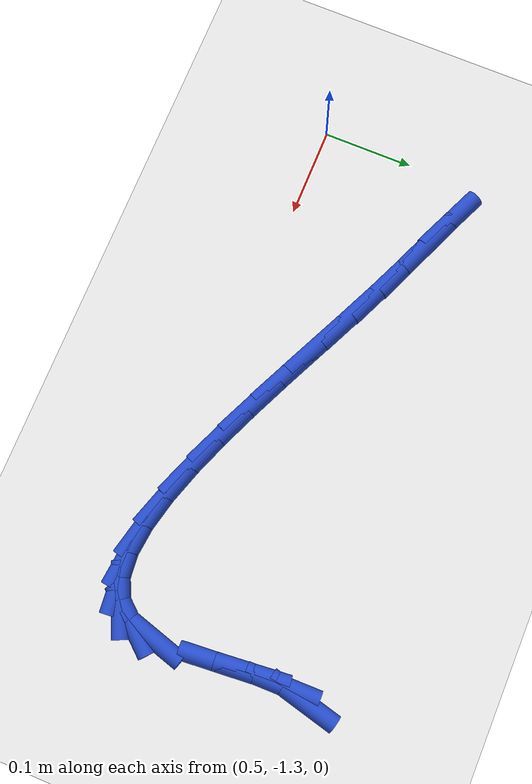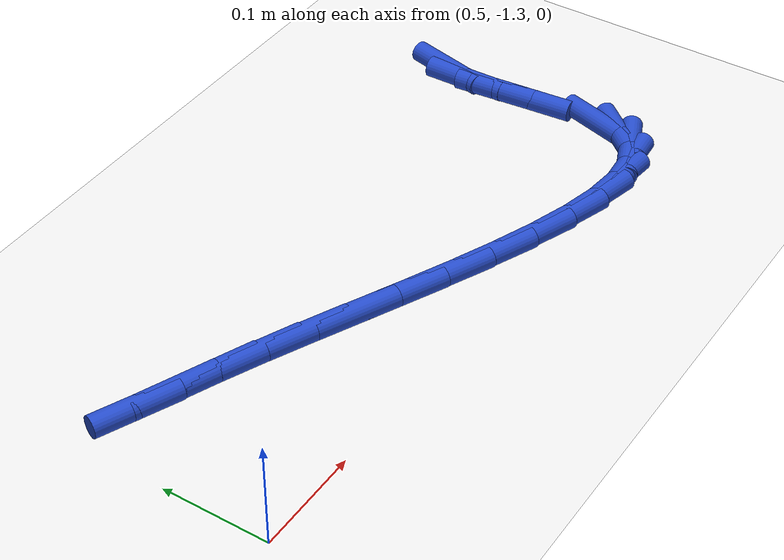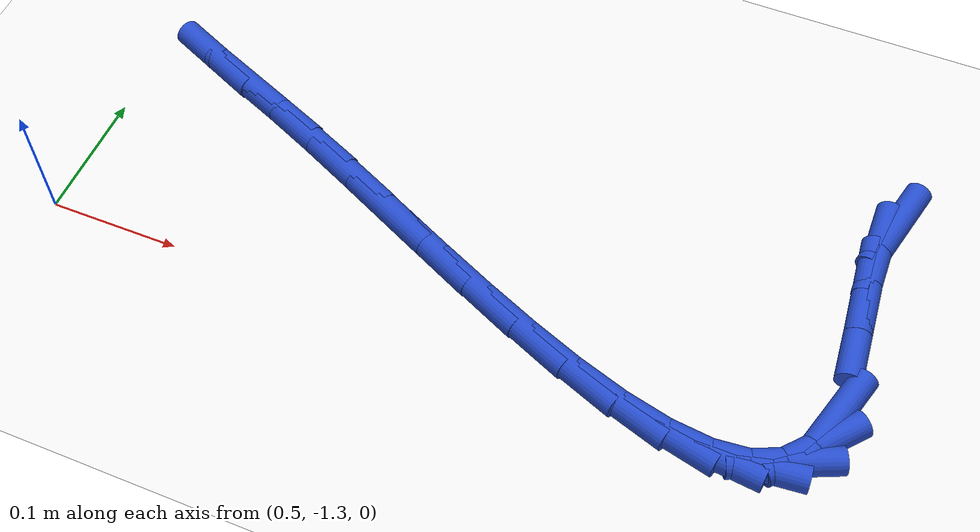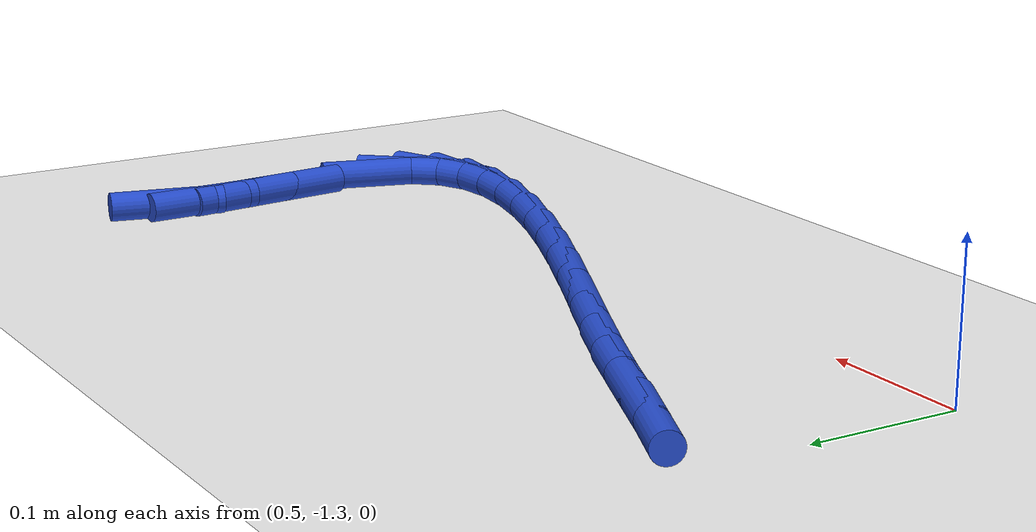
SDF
<sdf version="1.6">
 <world name="default">
  <model name="ground_plane">
   <static>1</static>
   <link name="link">
    <collision name="collision">
     <geometry><plane><normal>0 0 1</normal><size>100 100</size></plane></geometry>
     <surface><friction><ode><mu>100</mu><mu2>50</mu2></ode></friction></surface>
    </collision>
    <visual name="visual">
     <cast_shadows>0</cast_shadows>
     <geometry><plane><normal>0 0 1</normal><size>100 100</size></plane></geometry>
     <material>
      <script><uri>file://media/materials/scripts/gazebo.material</uri><name>Gazebo/WhiteGlow</name></script>
     </material>
    </visual>
   </link>
  </model>
  <model name="line">
   <link name="link_191">
    <pose>1.080014951495768 -1.093211270883468 0.01 0 1.57 1.3314929885869973</pose>
    <collision name="collision">
     <geometry><cylinder><radius>0.01</radius><length>0.08</length></cylinder></geometry>
    </collision>
    <visual name="visual">
     <material>
      <script><name>Gazebo/Blue</name><uri>file://media/materials/scripts/gazebo.material</uri></script>
     </material>
     <geometry><cylinder><radius>0.01</radius><length>0.08</length></cylinder></geometry>
    </visual>
   </link>
   <link name="link_192">
    <pose>1.0740790796262594 -1.1175407637634944 0.01 0 1.57 -1.5575941672031677</pose>
    <collision name="collision">
     <geometry><cylinder><radius>0.01</radius><length>0.08</length></cylinder></geometry>
    </collision>
    <visual name="visual">
     <material>
      <script><name>Gazebo/Blue</name><uri>file://media/materials/scripts/gazebo.material</uri></script>
     </material>
     <geometry><cylinder><radius>0.01</radius><length>0.08</length></cylinder></geometry>
    </visual>
   </link>
   <link name="link_193">
    <pose>1.0745164567472583 -1.1506680492268253 0.01 0 1.57 -1.4792197106948508</pose>
    <collision name="collision">
     <geometry><cylinder><radius>0.01</radius><length>0.08</length></cylinder></geometry>
    </collision>
    <visual name="visual">
     <material>
      <script><name>Gazebo/Blue</name><uri>file://media/materials/scripts/gazebo.material</uri></script>
     </material>
     <geometry><cylinder><radius>0.01</radius><length>0.08</length></cylinder></geometry>
    </visual>
   </link>
   <link name="link_194">
    <pose>1.0779749759274153 -1.1883288177135396 0.01 0 1.57 -1.4896386619614683</pose>
    <collision name="collision">
     <geometry><cylinder><radius>0.01</radius><length>0.08</length></cylinder></geometry>
    </collision>
    <visual name="visual">
     <material>
      <script><name>Gazebo/Blue</name><uri>file://media/materials/scripts/gazebo.material</uri></script>
     </material>
     <geometry><cylinder><radius>0.01</radius><length>0.08</length></cylinder></geometry>
    </visual>
   </link>
   <link name="link_196">
    <pose>1.0803561748203871 -1.2599360161398665 0.01 0 1.57 1.286484186516221</pose>
    <collision name="collision">
     <geometry><cylinder><radius>0.01</radius><length>0.08</length></cylinder></geometry>
    </collision>
    <visual name="visual">
     <material>
      <script><name>Gazebo/Blue</name><uri>file://media/materials/scripts/gazebo.material</uri></script>
     </material>
     <geometry><cylinder><radius>0.01</radius><length>0.08</length></cylinder></geometry>
    </visual>
   </link>
   <link name="link_197">
    <pose>1.0728366099445188 -1.2856677836955757 0.01 0 1.57 0.8606540219447025</pose>
    <collision name="collision">
     <geometry><cylinder><radius>0.01</radius><length>0.08</length></cylinder></geometry>
    </collision>
    <visual name="visual">
     <material>
      <script><name>Gazebo/Blue</name><uri>file://media/materials/scripts/gazebo.material</uri></script>
     </material>
     <geometry><cylinder><radius>0.01</radius><length>0.08</length></cylinder></geometry>
    </visual>
   </link>
   <link name="link_198">
    <pose>1.058110782414865 -1.3027952974203194 0.01 0 1.57 0.4192141598302386</pose>
    <collision name="collision">
     <geometry><cylinder><radius>0.01</radius><length>0.08</length></cylinder></geometry>
    </collision>
    <visual name="visual">
     <material>
      <script><name>Gazebo/Blue</name><uri>file://media/materials/scripts/gazebo.material</uri></script>
     </material>
     <geometry><cylinder><radius>0.01</radius><length>0.08</length></cylinder></geometry>
    </visual>
   </link>
   <link name="link_199">
    <pose>1.0369904574643043 -1.3122071545612584 0.01 0 1.57 0.0967836911282105</pose>
    <collision name="collision">
     <geometry><cylinder><radius>0.01</radius><length>0.08</length></cylinder></geometry>
    </collision>
    <visual name="visual">
     <material>
      <script><name>Gazebo/Blue</name><uri>file://media/materials/scripts/gazebo.material</uri></script>
     </material>
     <geometry><cylinder><radius>0.01</radius><length>0.08</length></cylinder></geometry>
    </visual>
   </link>
   <link name="link_200">
    <pose>1.0102931811226994 -1.3147991135987533 0.01 0 1.57 -0.10553561893972158</pose>
    <collision name="collision">
     <geometry><cylinder><radius>0.01</radius><length>0.08</length></cylinder></geometry>
    </collision>
    <visual name="visual">
     <material>
      <script><name>Gazebo/Blue</name><uri>file://media/materials/scripts/gazebo.material</uri></script>
     </material>
     <geometry><cylinder><radius>0.01</radius><length>0.08</length></cylinder></geometry>
    </visual>
   </link>
   <link name="link_201">
    <pose>0.9788364994199144 -1.3114669330131674 0.01 0 1.57 -0.2319335047512114</pose>
    <collision name="collision">
     <geometry><cylinder><radius>0.01</radius><length>0.08</length></cylinder></geometry>
    </collision>
    <visual name="visual">
     <material>
      <script><name>Gazebo/Blue</name><uri>file://media/materials/scripts/gazebo.material</uri></script>
     </material>
     <geometry><cylinder><radius>0.01</radius><length>0.08</length></cylinder></geometry>
    </visual>
   </link>
   <link name="link_202">
    <pose>0.9434379583858127 -1.303106371284862 0.01 0 1.57 -0.3136038743463667</pose>
    <collision name="collision">
     <geometry><cylinder><radius>0.01</radius><length>0.08</length></cylinder></geometry>
    </collision>
    <visual name="visual">
     <material>
      <script><name>Gazebo/Blue</name><uri>file://media/materials/scripts/gazebo.material</uri></script>
     </material>
     <geometry><cylinder><radius>0.01</radius><length>0.08</length></cylinder></geometry>
    </visual>
   </link>
   <link name="link_203">
    <pose>0.904915104050258 -1.2906131868942001 0.01 0 1.57 -0.36773586781821144</pose>
    <collision name="collision">
     <geometry><cylinder><radius>0.01</radius><length>0.08</length></cylinder></geometry>
    </collision>
    <visual name="visual">
     <material>
      <script><name>Gazebo/Blue</name><uri>file://media/materials/scripts/gazebo.material</uri></script>
     </material>
     <geometry><cylinder><radius>0.01</radius><length>0.08</length></cylinder></geometry>
    </visual>
   </link>
   <link name="link_204">
    <pose>0.8640854824431135 -1.2748831383215435 0.01 0 1.57 -0.403583598436781</pose>
    <collision name="collision">
     <geometry><cylinder><radius>0.01</radius><length>0.08</length></cylinder></geometry>
    </collision>
    <visual name="visual">
     <material>
      <script><name>Gazebo/Blue</name><uri>file://media/materials/scripts/gazebo.material</uri></script>
     </material>
     <geometry><cylinder><radius>0.01</radius><length>0.08</length></cylinder></geometry>
    </visual>
   </link>
   <link name="link_205">
    <pose>0.8217666395942431 -1.2568119840472542 0.01 0 1.57 -0.4261523236476703</pose>
    <collision name="collision">
     <geometry><cylinder><radius>0.01</radius><length>0.08</length></cylinder></geometry>
    </collision>
    <visual name="visual">
     <material>
      <script><name>Gazebo/Blue</name><uri>file://media/materials/scripts/gazebo.material</uri></script>
     </material>
     <geometry><cylinder><radius>0.01</radius><length>0.08</length></cylinder></geometry>
    </visual>
   </link>
   <link name="link_206">
    <pose>0.7787761215335106 -1.2372954825516953 0.01 0 1.57 -0.43800473306642973</pose>
    <collision name="collision">
     <geometry><cylinder><radius>0.01</radius><length>0.08</length></cylinder></geometry>
    </collision>
    <visual name="visual">
     <material>
      <script><name>Gazebo/Blue</name><uri>file://media/materials/scripts/gazebo.material</uri></script>
     </material>
     <geometry><cylinder><radius>0.01</radius><length>0.08</length></cylinder></geometry>
    </visual>
   </link>
   <link name="link_207">
    <pose>0.7359314742907789 -1.2172293923152275 0.01 0 1.57 -0.4400596651925322</pose>
    <collision name="collision">
     <geometry><cylinder><radius>0.01</radius><length>0.08</length></cylinder></geometry>
    </collision>
    <visual name="visual">
     <material>
      <script><name>Gazebo/Blue</name><uri>file://media/materials/scripts/gazebo.material</uri></script>
     </material>
     <geometry><cylinder><radius>0.01</radius><length>0.08</length></cylinder></geometry>
    </visual>
   </link>
   <link name="link_208">
    <pose>0.6940502438959122 -1.1975094718182142 0.01 0 1.57 -0.431794483935683</pose>
    <collision name="collision">
     <geometry><cylinder><radius>0.01</radius><length>0.08</length></cylinder></geometry>
    </collision>
    <visual name="visual">
     <material>
      <script><name>Gazebo/Blue</name><uri>file://media/materials/scripts/gazebo.material</uri></script>
     </material>
     <geometry><cylinder><radius>0.01</radius><length>0.08</length></cylinder></geometry>
    </visual>
   </link>
   <link name="link_209">
    <pose>0.6539499763787749 -1.179031479541018 0.01 0 1.57 -0.4114468398098594</pose>
    <collision name="collision">
     <geometry><cylinder><radius>0.01</radius><length>0.08</length></cylinder></geometry>
    </collision>
    <visual name="visual">
     <material>
      <script><name>Gazebo/Blue</name><uri>file://media/materials/scripts/gazebo.material</uri></script>
     </material>
     <geometry><cylinder><radius>0.01</radius><length>0.08</length></cylinder></geometry>
    </visual>
   </link>
   <link name="link_210">
    <pose>0.6164291967425883 -1.1626591957121988 0.01 0 1.57 -0.39067588078316706</pose>
    <collision name="collision">
     <geometry><cylinder><radius>0.01</radius><length>0.08</length></cylinder></geometry>
    </collision>
    <visual name="visual">
     <material>
      <script><name>Gazebo/Blue</name><uri>file://media/materials/scripts/gazebo.material</uri></script>
     </material>
     <geometry><cylinder><radius>0.01</radius><length>0.08</length></cylinder></geometry>
    </visual>
   </link>
   <link name="link_211">
    <pose>0.5817674755998178 -1.1483839316607805 0.01 0 1.57 -0.38870795793677754</pose>
    <collision name="collision">
     <geometry><cylinder><radius>0.01</radius><length>0.08</length></cylinder></geometry>
    </collision>
    <visual name="visual">
     <material>
      <script><name>Gazebo/Blue</name><uri>file://media/materials/scripts/gazebo.material</uri></script>
     </material>
     <geometry><cylinder><radius>0.01</radius><length>0.08</length></cylinder></geometry>
    </visual>
   </link>
   <link name="link_212">
    <pose>0.5496756755596554 -1.1352408837765777 0.01 0 1.57 -0.4115488482216898</pose>
    <collision name="collision">
     <geometry><cylinder><radius>0.01</radius><length>0.08</length></cylinder></geometry>
    </collision>
    <visual name="visual">
     <material>
      <script><name>Gazebo/Blue</name><uri>file://media/materials/scripts/gazebo.material</uri></script>
     </material>
     <geometry><cylinder><radius>0.01</radius><length>0.08</length></cylinder></geometry>
    </visual>
   </link>
  </model>
 </world>
</sdf>
